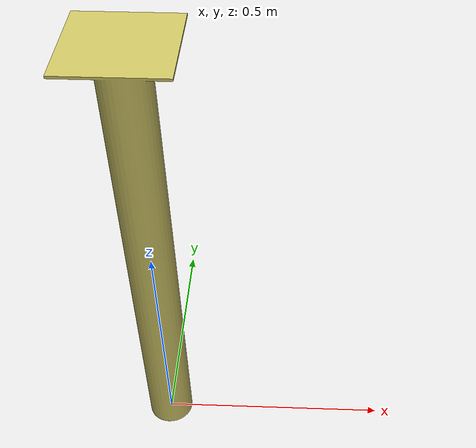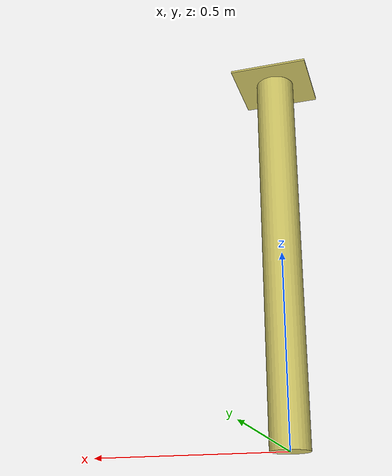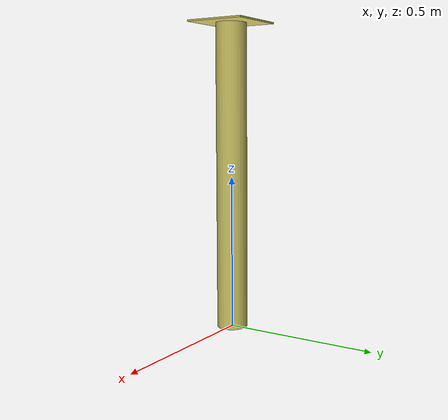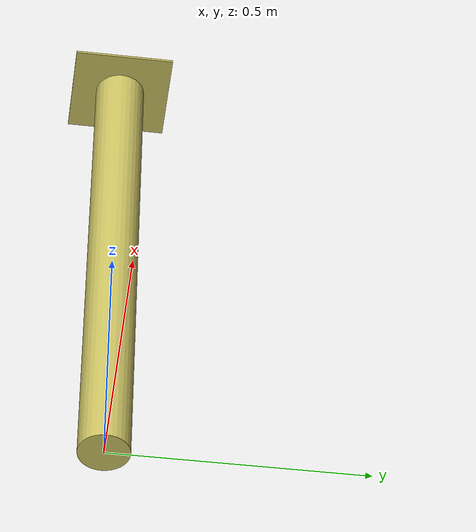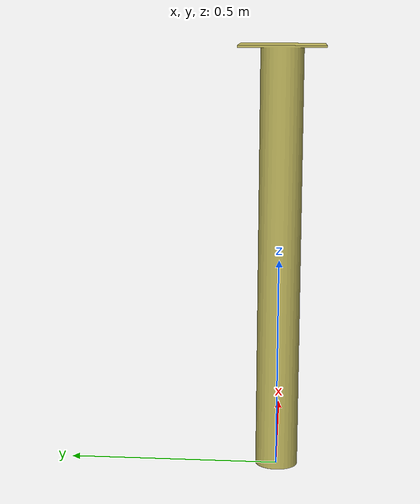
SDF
<?xml version="1.0"?>
<sdf version="1.6">
  <model name="task3_20_x_20">
    <pose>0 0 0 0 0 0</pose>
    <static>true</static>
    <link name="link">

      <!-- Visualización del modelo -->
      <visual name="visual">
        <geometry>
          <mesh>
            <uri>model://task3_20_x_20/meshes/task3_20_x_20.dae</uri>
            <scale>1 1 1</scale>
          </mesh>
        </geometry>
      </visual>

      <!-- Colisión usando el mismo modelo DAE -->
      <collision name="collision">
        <geometry>
          <mesh>
            <uri>model://task3_20_x_20/meshes/task3_20_x_20.dae</uri>
            <scale>1 1 1</scale>
          </mesh>
        </geometry>
      </collision>

    </link>
  </model>
</sdf>
